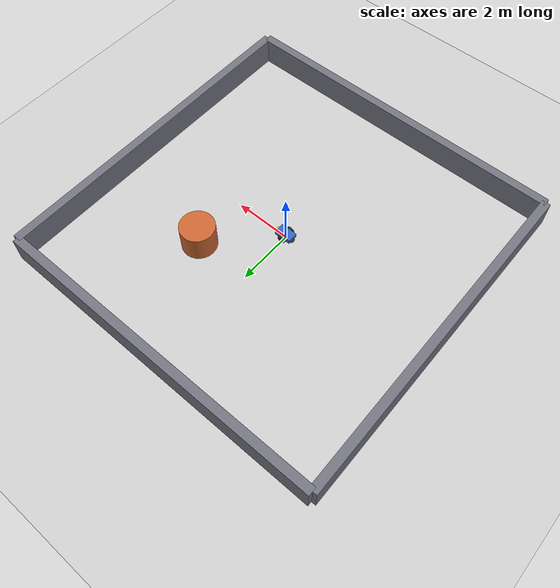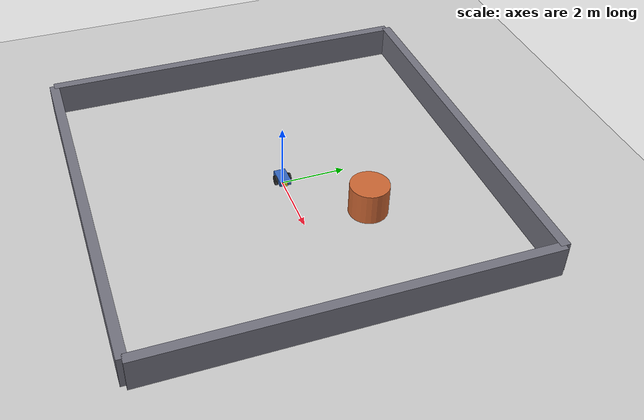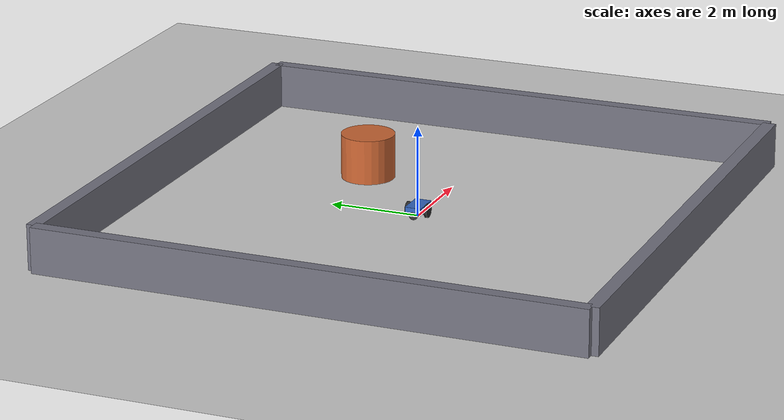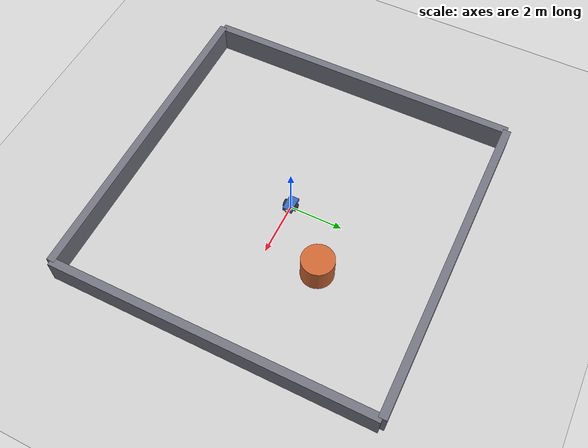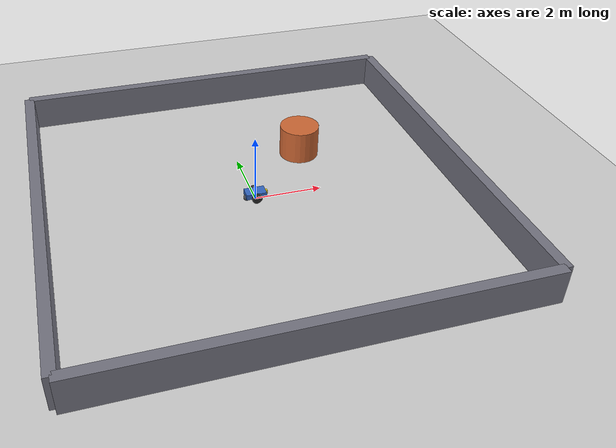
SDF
<?xml version="1.0" ?>
<sdf version="1.9">
  <world name="gama_loop">

    <physics name="1ms" type="ignored">
      <max_step_size>0.001</max_step_size>
      <real_time_factor>1.0</real_time_factor>
    </physics>

    <plugin filename="gz-sim-physics-system" name="gz::sim::systems::Physics"/>
    <plugin filename="gz-sim-user-commands-system" name="gz::sim::systems::UserCommands"/>
    <plugin filename="gz-sim-scene-broadcaster-system" name="gz::sim::systems::SceneBroadcaster"/>

    <light type="directional" name="sun">
      <cast_shadows>true</cast_shadows>
      <pose>0 0 10 0 0 0</pose>
      <diffuse>0.8 0.8 0.8 1</diffuse>
      <specular>0.2 0.2 0.2 1</specular>
      <direction>-0.5 0.1 -0.9</direction>
    </light>

    <model name="ground_plane">
      <static>true</static>
      <link name="link">
        <collision name="collision">
          <geometry><plane><normal>0 0 1</normal><size>100 100</size></plane></geometry>
          <surface>
            <friction><ode><mu>1.0</mu><mu2>1.0</mu2></ode></friction>
          </surface>
        </collision>
        <visual name="visual">
          <geometry><plane><normal>0 0 1</normal><size>100 100</size></plane></geometry>
          <material>
            <ambient>0.8 0.8 0.8 1</ambient>
            <diffuse>0.8 0.8 0.8 1</diffuse>
          </material>
        </visual>
      </link>
    </model>

    <!-- Obstacles. GAMA does not know they exist: it only finds out through the odometry, when the
         robot stops moving while still being told to go forward. -->
    <model name="wall_north">
      <static>true</static>
      <pose>0 6 0.5 0 0 0</pose>
      <link name="link">
        <collision name="collision"><geometry><box><size>12 0.3 1</size></box></geometry></collision>
        <visual name="visual">
          <geometry><box><size>12 0.3 1</size></box></geometry>
          <material><ambient>0.45 0.45 0.5 1</ambient><diffuse>0.45 0.45 0.5 1</diffuse></material>
        </visual>
      </link>
    </model>

    <model name="wall_south">
      <static>true</static>
      <pose>0 -6 0.5 0 0 0</pose>
      <link name="link">
        <collision name="collision"><geometry><box><size>12 0.3 1</size></box></geometry></collision>
        <visual name="visual">
          <geometry><box><size>12 0.3 1</size></box></geometry>
          <material><ambient>0.45 0.45 0.5 1</ambient><diffuse>0.45 0.45 0.5 1</diffuse></material>
        </visual>
      </link>
    </model>

    <model name="wall_east">
      <static>true</static>
      <pose>6 0 0.5 0 0 0</pose>
      <link name="link">
        <collision name="collision"><geometry><box><size>0.3 12 1</size></box></geometry></collision>
        <visual name="visual">
          <geometry><box><size>0.3 12 1</size></box></geometry>
          <material><ambient>0.45 0.45 0.5 1</ambient><diffuse>0.45 0.45 0.5 1</diffuse></material>
        </visual>
      </link>
    </model>

    <model name="wall_west">
      <static>true</static>
      <pose>-6 0 0.5 0 0 0</pose>
      <link name="link">
        <collision name="collision"><geometry><box><size>0.3 12 1</size></box></geometry></collision>
        <visual name="visual">
          <geometry><box><size>0.3 12 1</size></box></geometry>
          <material><ambient>0.45 0.45 0.5 1</ambient><diffuse>0.45 0.45 0.5 1</diffuse></material>
        </visual>
      </link>
    </model>

    <model name="pillar">
      <static>true</static>
      <pose>2 2 0.5 0 0 0</pose>
      <link name="link">
        <collision name="collision"><geometry><cylinder><radius>0.6</radius><length>1</length></cylinder></geometry></collision>
        <visual name="visual">
          <geometry><cylinder><radius>0.6</radius><length>1</length></cylinder></geometry>
          <material><ambient>0.8 0.4 0.2 1</ambient><diffuse>0.8 0.4 0.2 1</diffuse></material>
        </visual>
      </link>
    </model>

    <!-- The robot. Wheel separation and radius below must match what the DiffDrive plugin is told,
         otherwise the odometry it computes will not describe the motion it produces. -->
    <model name="gama_bot">
      <pose>0 0 0.15 0 0 0</pose>

      <link name="chassis">
        <pose>0 0 0.05 0 0 0</pose>
        <inertial>
          <mass>4.0</mass>
          <inertia><ixx>0.06</ixx><iyy>0.10</iyy><izz>0.14</izz><ixy>0</ixy><ixz>0</ixz><iyz>0</iyz></inertia>
        </inertial>
        <visual name="visual">
          <geometry><box><size>0.6 0.36 0.16</size></box></geometry>
          <material><ambient>0.2 0.4 0.75 1</ambient><diffuse>0.2 0.4 0.75 1</diffuse></material>
        </visual>
        <visual name="nose">
          <pose>0.32 0 0 0 0 0</pose>
          <geometry><box><size>0.08 0.1 0.1</size></box></geometry>
          <material><ambient>0.95 0.85 0.1 1</ambient><diffuse>0.95 0.85 0.1 1</diffuse></material>
        </visual>
        <collision name="collision">
          <geometry><box><size>0.6 0.36 0.16</size></box></geometry>
        </collision>
      </link>

      <link name="left_wheel">
        <pose>0 0.22 0 -1.5707 0 0</pose>
        <inertial>
          <mass>0.5</mass>
          <inertia><ixx>0.0015</ixx><iyy>0.0015</iyy><izz>0.0025</izz><ixy>0</ixy><ixz>0</ixz><iyz>0</iyz></inertia>
        </inertial>
        <visual name="visual">
          <geometry><cylinder><radius>0.15</radius><length>0.06</length></cylinder></geometry>
          <material><ambient>0.15 0.15 0.15 1</ambient><diffuse>0.15 0.15 0.15 1</diffuse></material>
        </visual>
        <collision name="collision">
          <geometry><cylinder><radius>0.15</radius><length>0.06</length></cylinder></geometry>
          <surface>
            <friction><ode><mu>1.2</mu><mu2>1.2</mu2></ode></friction>
          </surface>
        </collision>
      </link>

      <link name="right_wheel">
        <pose>0 -0.22 0 -1.5707 0 0</pose>
        <inertial>
          <mass>0.5</mass>
          <inertia><ixx>0.0015</ixx><iyy>0.0015</iyy><izz>0.0025</izz><ixy>0</ixy><ixz>0</ixz><iyz>0</iyz></inertia>
        </inertial>
        <visual name="visual">
          <geometry><cylinder><radius>0.15</radius><length>0.06</length></cylinder></geometry>
          <material><ambient>0.15 0.15 0.15 1</ambient><diffuse>0.15 0.15 0.15 1</diffuse></material>
        </visual>
        <collision name="collision">
          <geometry><cylinder><radius>0.15</radius><length>0.06</length></cylinder></geometry>
          <surface>
            <friction><ode><mu>1.2</mu><mu2>1.2</mu2></ode></friction>
          </surface>
        </collision>
      </link>

      <!-- A frictionless ball to hold the back up, standing in for a caster -->
      <link name="caster">
        <pose>-0.25 0 -0.05 0 0 0</pose>
        <inertial>
          <mass>0.2</mass>
          <inertia><ixx>0.0002</ixx><iyy>0.0002</iyy><izz>0.0002</izz><ixy>0</ixy><ixz>0</ixz><iyz>0</iyz></inertia>
        </inertial>
        <visual name="visual">
          <geometry><sphere><radius>0.1</radius></sphere></geometry>
          <material><ambient>0.3 0.3 0.3 1</ambient><diffuse>0.3 0.3 0.3 1</diffuse></material>
        </visual>
        <collision name="collision">
          <geometry><sphere><radius>0.1</radius></sphere></geometry>
          <surface>
            <friction><ode><mu>0.05</mu><mu2>0.05</mu2></ode></friction>
          </surface>
        </collision>
      </link>

      <joint name="left_wheel_joint" type="revolute">
        <parent>chassis</parent>
        <child>left_wheel</child>
        <axis>
          <xyz>0 0 1</xyz>
          <limit><lower>-1.79769e+308</lower><upper>1.79769e+308</upper></limit>
        </axis>
      </joint>

      <joint name="right_wheel_joint" type="revolute">
        <parent>chassis</parent>
        <child>right_wheel</child>
        <axis>
          <xyz>0 0 1</xyz>
          <limit><lower>-1.79769e+308</lower><upper>1.79769e+308</upper></limit>
        </axis>
      </joint>

      <joint name="caster_joint" type="ball">
        <parent>chassis</parent>
        <child>caster</child>
      </joint>

      <plugin filename="gz-sim-diff-drive-system" name="gz::sim::systems::DiffDrive">
        <left_joint>left_wheel_joint</left_joint>
        <right_joint>right_wheel_joint</right_joint>
        <wheel_separation>0.44</wheel_separation>
        <wheel_radius>0.15</wheel_radius>
        <odom_publish_frequency>30</odom_publish_frequency>
        <topic>/model/gama_bot/cmd_vel</topic>
        <odom_topic>/model/gama_bot/odometry</odom_topic>
        <frame_id>odom</frame_id>
        <child_frame_id>base_link</child_frame_id>
        <!-- Deliberately gentle, so that the lag between what GAMA asks and what the robot does is
             visible in the charts rather than instantaneous -->
        <max_linear_acceleration>1.0</max_linear_acceleration>
        <min_linear_acceleration>-1.0</min_linear_acceleration>
      </plugin>

  <plugin filename="gz-sim-pose-publisher-system" name="gz::sim::systems::PosePublisher">
    <pose_publish_frequency>30</pose_publish_frequency>
    <publish_model_pose>true</publish_model_pose>
    <publish_link_pose>false</publish_link_pose>
    <use_pose_vector_msg>false</use_pose_vector_msg>
    <topic>/model/gama_bot/pose</topic>
  </plugin>

    </model>

  </world>
</sdf>
